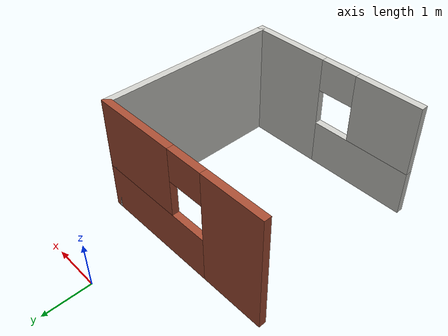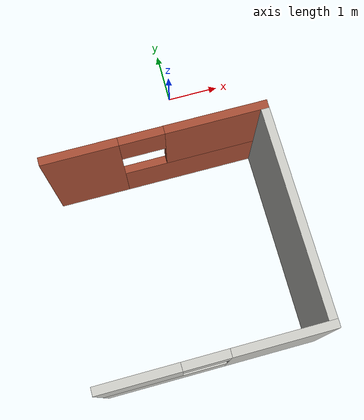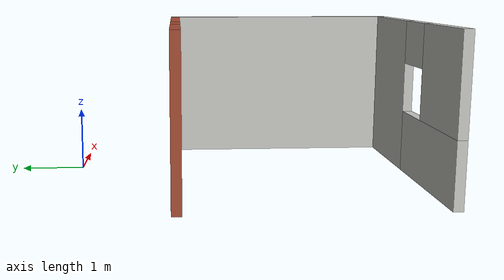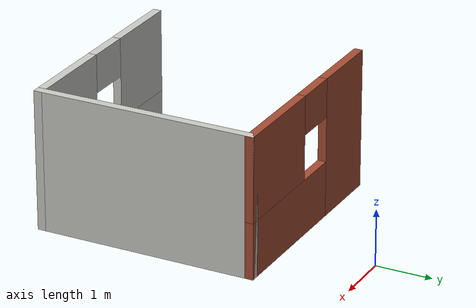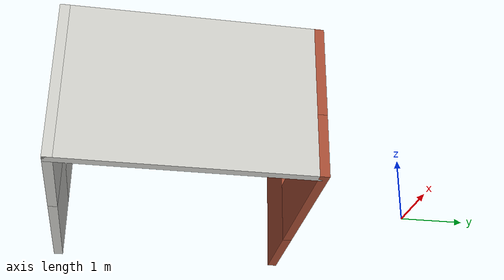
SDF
<?xml version='1.0'?>
<sdf version='1.6'>
  <model name='house_3'>
    <pose frame=''>-0.635 -3.515 0 0 -0 0</pose>
    <link name='Wall_0'>
      <pose frame=''>0 1.925 0 0 -0 0</pose>
      <visual name='Wall_0_Visual_0'>
        <pose frame=''>-1.31693 0 1.25 0 -0 0</pose>
        <geometry>
          <box>
            <size>1.36622 0.15 2.5</size>
          </box>
        </geometry>
        <material>
          <script>
            <uri>file://media/materials/scripts/gazebo.material</uri>
            <name>Gazebo/Bricks</name>
          </script>
          <ambient>1 1 1 1</ambient>
        </material>
        <meta>
          <layer>0</layer>
        </meta>
      </visual>
      <collision name='Wall_0_Collision_0'>
        <geometry>
          <box>
            <size>1.36622 0.15 2.5</size>
          </box>
        </geometry>
        <pose frame=''>-1.31693 0 1.25 0 -0 0</pose>
      </collision>
      <visual name='Wall_0_Visual_1'>
        <pose frame=''>0.68311 0 0.5 0 -0 0</pose>
        <geometry>
          <box>
            <size>2.63387 0.15 1</size>
          </box>
        </geometry>
        <material>
          <script>
            <uri>file://media/materials/scripts/gazebo.material</uri>
            <name>Gazebo/Bricks</name>
          </script>
          <ambient>1 1 1 1</ambient>
        </material>
        <meta>
          <layer>0</layer>
        </meta>
      </visual>
      <collision name='Wall_0_Collision_1'>
        <geometry>
          <box>
            <size>2.63387 0.15 1</size>
          </box>
        </geometry>
        <pose frame=''>0.68311 0 0.5 0 -0 0</pose>
      </collision>
      <visual name='Wall_0_Visual_2'>
        <pose frame=''>1.08311 0 1.75 0 -0 0</pose>
        <geometry>
          <box>
            <size>1.83387 0.15 1.5</size>
          </box>
        </geometry>
        <material>
          <script>
            <uri>file://media/materials/scripts/gazebo.material</uri>
            <name>Gazebo/Bricks</name>
          </script>
          <ambient>1 1 1 1</ambient>
        </material>
        <meta>
          <layer>0</layer>
        </meta>
      </visual>
      <collision name='Wall_0_Collision_2'>
        <geometry>
          <box>
            <size>1.83387 0.15 1.5</size>
          </box>
        </geometry>
        <pose frame=''>1.08311 0 1.75 0 -0 0</pose>
      </collision>
      <visual name='Wall_0_Visual_3'>
        <pose frame=''>-0.233825 0 2.15 0 -0 0</pose>
        <geometry>
          <box>
            <size>0.8 0.15 0.7</size>
          </box>
        </geometry>
        <material>
          <script>
            <uri>file://media/materials/scripts/gazebo.material</uri>
            <name>Gazebo/Bricks</name>
          </script>
          <ambient>1 1 1 1</ambient>
        </material>
        <meta>
          <layer>0</layer>
        </meta>
      </visual>
      <collision name='Wall_0_Collision_3'>
        <geometry>
          <box>
            <size>0.8 0.15 0.7</size>
          </box>
        </geometry>
        <pose frame=''>-0.233825 0 2.15 0 -0 0</pose>
      </collision>
    </link>
    <link name='Wall_1'>
      <collision name='Wall_1_Collision'>
        <geometry>
          <box>
            <size>4 0.15 2.5</size>
          </box>
        </geometry>
        <pose frame=''>0 0 1.25 0 -0 0</pose>
      </collision>
      <visual name='Wall_1_Visual'>
        <pose frame=''>0 0 1.25 0 -0 0</pose>
        <geometry>
          <box>
            <size>4 0.15 2.5</size>
          </box>
        </geometry>
        <material>
          <script>
            <uri>file://media/materials/scripts/gazebo.material</uri>
            <name>Gazebo/CeilingTiled</name>
          </script>
          <ambient>0.921569 0.807843 0.615686 1</ambient>
        </material>
        <meta>
          <layer>0</layer>
        </meta>
      </visual>
      <pose frame=''>1.925 0 0 0 -0 -1.5708</pose>
    </link>
    <link name='Wall_5'>
      <pose frame=''>0 -1.925 0 0 -0 3.14159</pose>
      <visual name='Wall_5_Visual_0'>
        <pose frame=''>-1.11615 0 1.25 0 -0 0</pose>
        <geometry>
          <box>
            <size>1.7677 0.15 2.5</size>
          </box>
        </geometry>
        <material>
          <script>
            <uri>file://media/materials/scripts/gazebo.material</uri>
            <name>Gazebo/CeilingTiled</name>
          </script>
          <ambient>0.760784 0.662745 0.627451 1</ambient>
        </material>
        <meta>
          <layer>0</layer>
        </meta>
      </visual>
      <collision name='Wall_5_Collision_0'>
        <geometry>
          <box>
            <size>1.7677 0.15 2.5</size>
          </box>
        </geometry>
        <pose frame=''>-1.11615 0 1.25 0 -0 0</pose>
      </collision>
      <visual name='Wall_5_Visual_1'>
        <pose frame=''>0.88385 0 0.5 0 -0 0</pose>
        <geometry>
          <box>
            <size>2.2323 0.15 1</size>
          </box>
        </geometry>
        <material>
          <script>
            <uri>file://media/materials/scripts/gazebo.material</uri>
            <name>Gazebo/CeilingTiled</name>
          </script>
          <ambient>0.760784 0.662745 0.627451 1</ambient>
        </material>
        <meta>
          <layer>0</layer>
        </meta>
      </visual>
      <collision name='Wall_5_Collision_1'>
        <geometry>
          <box>
            <size>2.2323 0.15 1</size>
          </box>
        </geometry>
        <pose frame=''>0.88385 0 0.5 0 -0 0</pose>
      </collision>
      <visual name='Wall_5_Visual_2'>
        <pose frame=''>1.28385 0 1.75 0 -0 0</pose>
        <geometry>
          <box>
            <size>1.4323 0.15 1.5</size>
          </box>
        </geometry>
        <material>
          <script>
            <uri>file://media/materials/scripts/gazebo.material</uri>
            <name>Gazebo/CeilingTiled</name>
          </script>
          <ambient>0.760784 0.662745 0.627451 1</ambient>
        </material>
        <meta>
          <layer>0</layer>
        </meta>
      </visual>
      <collision name='Wall_5_Collision_2'>
        <geometry>
          <box>
            <size>1.4323 0.15 1.5</size>
          </box>
        </geometry>
        <pose frame=''>1.28385 0 1.75 0 -0 0</pose>
      </collision>
      <visual name='Wall_5_Visual_3'>
        <pose frame=''>0.1677 0 2.15 0 -0 0</pose>
        <geometry>
          <box>
            <size>0.8 0.15 0.7</size>
          </box>
        </geometry>
        <material>
          <script>
            <uri>file://media/materials/scripts/gazebo.material</uri>
            <name>Gazebo/CeilingTiled</name>
          </script>
          <ambient>0.760784 0.662745 0.627451 1</ambient>
        </material>
        <meta>
          <layer>0</layer>
        </meta>
      </visual>
      <collision name='Wall_5_Collision_3'>
        <geometry>
          <box>
            <size>0.8 0.15 0.7</size>
          </box>
        </geometry>
        <pose frame=''>0.1677 0 2.15 0 -0 0</pose>
      </collision>
    </link>
    <static>1</static>
  </model>
</sdf>
